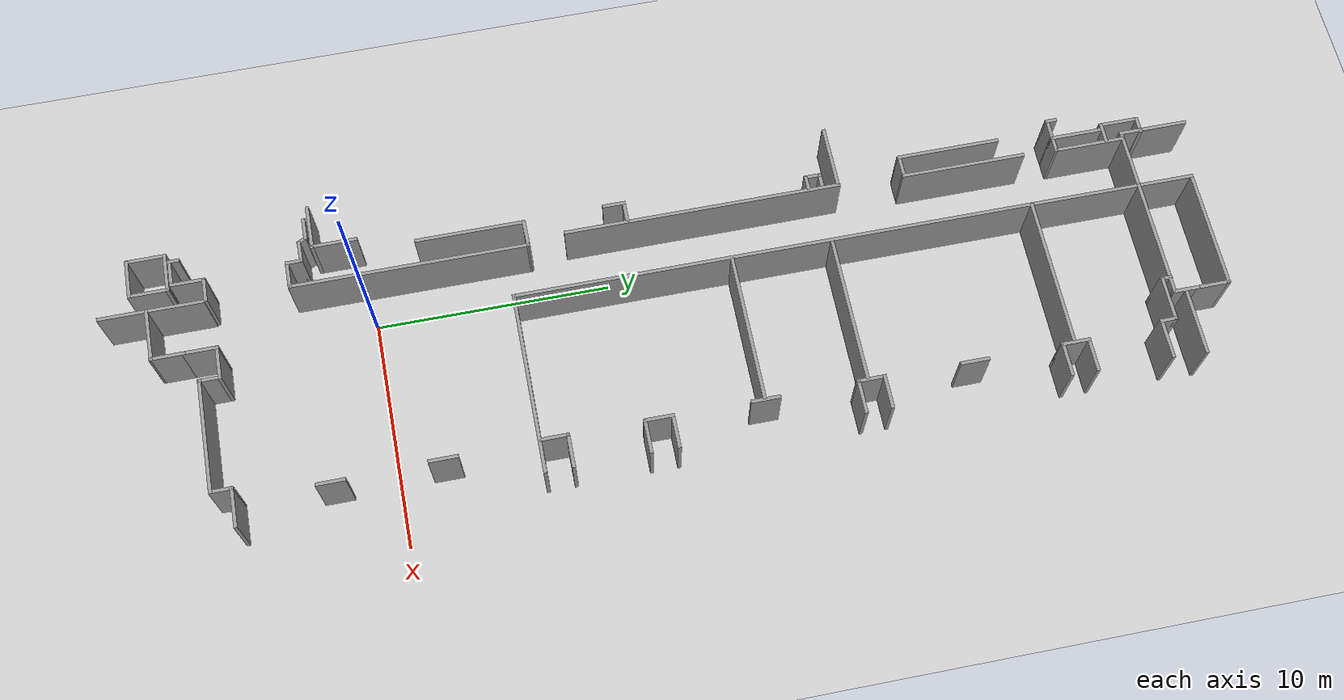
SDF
<sdf version="1.7">
 <world name="default">
  <model name="ground_plane">
   <static>1</static>
   <link name="link">
    <collision name="collision">
     <geometry><plane><normal>0 0 1</normal><size>100 100</size></plane></geometry>
     <surface>
      <contact><collide_bitmask>65535</collide_bitmask></contact>
      <friction><ode><mu>100</mu><mu2>50</mu2></ode></friction>
     </surface>
    </collision>
    <visual name="visual">
     <cast_shadows>0</cast_shadows>
     <geometry><plane><normal>0 0 1</normal><size>100 100</size></plane></geometry>
     <material>
      <script><uri>file://media/materials/scripts/gazebo.material</uri><name>Gazebo/Grey</name></script>
     </material>
    </visual>
   </link>
  </model>
  <model name="Tsudanuma_2-3-without_door">
   <pose>11.8595 12.3796 0 0 -0 0</pose>
   <link name="Wall_108">
    <collision name="Wall_108_Collision">
     <geometry><box><size>4.5 0.15 2.5</size></box></geometry>
     <pose>0 0 1.25 0 -0 0</pose>
    </collision>
    <visual name="Wall_108_Visual">
     <pose>0 0 1.25 0 -0 0</pose>
     <geometry><box><size>4.5 0.15 2.5</size></box></geometry>
     <material>
      <script><uri>file://media/materials/scripts/gazebo.material</uri><name>Gazebo/Grey</name></script>
      <ambient>1 1 1 1</ambient>
     </material>
     <meta><layer>0</layer></meta>
    </visual>
    <pose>-14.3708 13.0917 0 0 -0 -1.5708</pose>
   </link>
   <link name="Wall_109">
    <collision name="Wall_109_Collision">
     <geometry><box><size>1 0.15 2.5</size></box></geometry>
     <pose>0 0 1.25 0 -0 0</pose>
    </collision>
    <visual name="Wall_109_Visual">
     <pose>0 0 1.25 0 -0 0</pose>
     <geometry><box><size>1 0.15 2.5</size></box></geometry>
     <material>
      <script><uri>file://media/materials/scripts/gazebo.material</uri><name>Gazebo/Grey</name></script>
      <ambient>1 1 1 1</ambient>
     </material>
     <meta><layer>0</layer></meta>
    </visual>
    <pose>-13.9458 10.9167 0 0 -0 0</pose>
   </link>
   <link name="Wall_112">
    <collision name="Wall_112_Collision">
     <geometry><box><size>5.4 0.15 2.5</size></box></geometry>
     <pose>0 0 1.25 0 -0 0</pose>
    </collision>
    <visual name="Wall_112_Visual">
     <pose>0 0 1.25 0 -0 0</pose>
     <geometry><box><size>5.4 0.15 2.5</size></box></geometry>
     <material>
      <script><uri>file://media/materials/scripts/gazebo.material</uri><name>Gazebo/Grey</name></script>
      <ambient>1 1 1 1</ambient>
     </material>
     <meta><layer>0</layer></meta>
    </visual>
    <pose>-13.4614 13.5404 0 0 -0 -1.5708</pose>
   </link>
   <link name="Wall_122">
    <collision name="Wall_122_Collision">
     <geometry><box><size>12 0.15 2.5</size></box></geometry>
     <pose>0 0 1.25 0 -0 0</pose>
    </collision>
    <visual name="Wall_122_Visual">
     <pose>0 0 1.25 0 -0 0</pose>
     <geometry><box><size>12 0.15 2.5</size></box></geometry>
     <material>
      <script><uri>file://media/materials/scripts/gazebo.material</uri><name>Gazebo/Grey</name></script>
      <ambient>1 1 1 1</ambient>
     </material>
     <meta><layer>0</layer></meta>
    </visual>
    <pose>-13.5711 2.11814 0 0 -0 1.5708</pose>
   </link>
   <link name="Wall_123">
    <collision name="Wall_123_Collision">
     <geometry><box><size>2.82925 0.15 2.5</size></box></geometry>
     <pose>0 0 1.25 0 -0 0</pose>
    </collision>
    <visual name="Wall_123_Visual">
     <pose>0 0 1.25 0 -0 0</pose>
     <geometry><box><size>2.82925 0.15 2.5</size></box></geometry>
     <material>
      <script><uri>file://media/materials/scripts/gazebo.material</uri><name>Gazebo/Grey</name></script>
      <ambient>1 1 1 1</ambient>
     </material>
     <meta><layer>0</layer></meta>
    </visual>
    <pose>-14.9297 8.02417 0 0 -0 -3.14159</pose>
   </link>
   <link name="Wall_13">
    <collision name="Wall_13_Collision">
     <geometry><box><size>1.5 0.15 2.5</size></box></geometry>
     <pose>0 0 1.25 0 -0 0</pose>
    </collision>
    <visual name="Wall_13_Visual">
     <pose>0 0 1.25 0 -0 0</pose>
     <geometry><box><size>1.5 0.15 2.5</size></box></geometry>
     <material>
      <script><uri>file://media/materials/scripts/gazebo.material</uri><name>Gazebo/Grey</name></script>
      <ambient>1 1 1 1</ambient>
     </material>
     <meta><layer>0</layer></meta>
    </visual>
    <pose>-5.97206 22.335 0 0 -0 1.5708</pose>
   </link>
   <link name="Wall_135">
    <collision name="Wall_135_Collision">
     <geometry><box><size>1 0.15 2.5</size></box></geometry>
     <pose>0 0 1.25 0 -0 0</pose>
    </collision>
    <visual name="Wall_135_Visual">
     <pose>0 0 1.25 0 -0 0</pose>
     <geometry><box><size>1 0.15 2.5</size></box></geometry>
     <material>
      <script><uri>file://media/materials/scripts/gazebo.material</uri><name>Gazebo/Grey</name></script>
      <ambient>1 1 1 1</ambient>
     </material>
     <meta><layer>0</layer></meta>
    </visual>
    <pose>-14.4819 -1.56838 0 0 -0 1.5708</pose>
   </link>
   <link name="Wall_136">
    <collision name="Wall_136_Collision">
     <geometry><box><size>1 0.15 2.5</size></box></geometry>
     <pose>0 0 1.25 0 -0 0</pose>
    </collision>
    <visual name="Wall_136_Visual">
     <pose>0 0 1.25 0 -0 0</pose>
     <geometry><box><size>1 0.15 2.5</size></box></geometry>
     <material>
      <script><uri>file://media/materials/scripts/gazebo.material</uri><name>Gazebo/Grey</name></script>
      <ambient>1 1 1 1</ambient>
     </material>
     <meta><layer>0</layer></meta>
    </visual>
    <pose>-14.0569 -1.14338 0 0 -0 0</pose>
   </link>
   <link name="Wall_14">
    <collision name="Wall_14_Collision">
     <geometry><box><size>5.25 0.15 2.5</size></box></geometry>
     <pose>0 0 1.25 0 -0 0</pose>
    </collision>
    <visual name="Wall_14_Visual">
     <pose>0 0 1.25 0 -0 0</pose>
     <geometry><box><size>5.25 0.15 2.5</size></box></geometry>
     <material>
      <script><uri>file://media/materials/scripts/gazebo.material</uri><name>Gazebo/Grey</name></script>
      <ambient>1 1 1 1</ambient>
     </material>
     <meta><layer>0</layer></meta>
    </visual>
    <pose>-8.52206 23.01 0 0 -0 3.14159</pose>
   </link>
   <link name="Wall_15">
    <collision name="Wall_15_Collision">
     <geometry><box><size>2.5 0.15 2.5</size></box></geometry>
     <pose>0 0 1.25 0 -0 0</pose>
    </collision>
    <visual name="Wall_15_Visual">
     <pose>0 0 1.25 0 -0 0</pose>
     <geometry><box><size>2.5 0.15 2.5</size></box></geometry>
     <material>
      <script><uri>file://media/materials/scripts/gazebo.material</uri><name>Gazebo/Grey</name></script>
      <ambient>1 1 1 1</ambient>
     </material>
     <meta><layer>0</layer></meta>
    </visual>
    <pose>-11.0721 21.835 0 0 -0 -1.5708</pose>
   </link>
   <link name="Wall_152">
    <collision name="Wall_152_Collision">
     <geometry><box><size>1 0.15 2.5</size></box></geometry>
     <pose>0 0 1.25 0 -0 0</pose>
    </collision>
    <visual name="Wall_152_Visual">
     <pose>0 0 1.25 0 -0 0</pose>
     <geometry><box><size>1 0.15 2.5</size></box></geometry>
     <material>
      <script><uri>file://media/materials/scripts/gazebo.material</uri><name>Gazebo/Grey</name></script>
      <ambient>1 1 1 1</ambient>
     </material>
     <meta><layer>0</layer></meta>
    </visual>
    <pose>-15.8574 -14.6546 0 0 -0 0</pose>
   </link>
   <link name="Wall_153">
    <collision name="Wall_153_Collision">
     <geometry><box><size>0.5 0.15 2.5</size></box></geometry>
     <pose>0 0 1.25 0 -0 0</pose>
    </collision>
    <visual name="Wall_153_Visual">
     <pose>0 0 1.25 0 -0 0</pose>
     <geometry><box><size>0.5 0.15 2.5</size></box></geometry>
     <material>
      <script><uri>file://media/materials/scripts/gazebo.material</uri><name>Gazebo/Grey</name></script>
      <ambient>1 1 1 1</ambient>
     </material>
     <meta><layer>0</layer></meta>
    </visual>
    <pose>-15.3449 -14.8061 0 0 -0 -1.0472</pose>
   </link>
   <link name="Wall_154">
    <collision name="Wall_154_Collision">
     <geometry><box><size>1 0.15 2.5</size></box></geometry>
     <pose>0 0 1.25 0 -0 0</pose>
    </collision>
    <visual name="Wall_154_Visual">
     <pose>0 0 1.25 0 -0 0</pose>
     <geometry><box><size>1 0.15 2.5</size></box></geometry>
     <material>
      <script><uri>file://media/materials/scripts/gazebo.material</uri><name>Gazebo/Grey</name></script>
      <ambient>1 1 1 1</ambient>
     </material>
     <meta><layer>0</layer></meta>
    </visual>
    <pose>-14.8324 -14.9577 0 0 -0 0</pose>
   </link>
   <link name="Wall_155">
    <collision name="Wall_155_Collision">
     <geometry><box><size>0.75 0.15 2.5</size></box></geometry>
     <pose>0 0 1.25 0 -0 0</pose>
    </collision>
    <visual name="Wall_155_Visual">
     <pose>0 0 1.25 0 -0 0</pose>
     <geometry><box><size>0.75 0.15 2.5</size></box></geometry>
     <material>
      <script><uri>file://media/materials/scripts/gazebo.material</uri><name>Gazebo/Grey</name></script>
      <ambient>1 1 1 1</ambient>
     </material>
     <meta><layer>0</layer></meta>
    </visual>
    <pose>-14.4074 -15.2577 0 0 -0 -1.5708</pose>
   </link>
   <link name="Wall_156">
    <collision name="Wall_156_Collision">
     <geometry><box><size>1.25 0.15 2.5</size></box></geometry>
     <pose>0 0 1.25 0 -0 0</pose>
    </collision>
    <visual name="Wall_156_Visual">
     <pose>0 0 1.25 0 -0 0</pose>
     <geometry><box><size>1.25 0.15 2.5</size></box></geometry>
     <material>
      <script><uri>file://media/materials/scripts/gazebo.material</uri><name>Gazebo/Grey</name></script>
      <ambient>1 1 1 1</ambient>
     </material>
     <meta><layer>0</layer></meta>
    </visual>
    <pose>-13.8574 -15.5577 0 0 -0 0</pose>
   </link>
   <link name="Wall_157">
    <collision name="Wall_157_Collision">
     <geometry><box><size>10.25 0.15 2.5</size></box></geometry>
     <pose>0 0 1.25 0 -0 0</pose>
    </collision>
    <visual name="Wall_157_Visual">
     <pose>0 0 1.25 0 -0 0</pose>
     <geometry><box><size>10.25 0.15 2.5</size></box></geometry>
     <material>
      <script><uri>file://media/materials/scripts/gazebo.material</uri><name>Gazebo/Grey</name></script>
      <ambient>1 1 1 1</ambient>
     </material>
     <meta><layer>0</layer></meta>
    </visual>
    <pose>-13.3074 -10.5077 0 0 -0 1.5708</pose>
   </link>
   <link name="Wall_158">
    <collision name="Wall_158_Collision">
     <geometry><box><size>1.25 0.15 2.5</size></box></geometry>
     <pose>0 0 1.25 0 -0 0</pose>
    </collision>
    <visual name="Wall_158_Visual">
     <pose>0 0 1.25 0 -0 0</pose>
     <geometry><box><size>1.25 0.15 2.5</size></box></geometry>
     <material>
      <script><uri>file://media/materials/scripts/gazebo.material</uri><name>Gazebo/Grey</name></script>
      <ambient>1 1 1 1</ambient>
     </material>
     <meta><layer>0</layer></meta>
    </visual>
    <pose>-13.8574 -5.4671 0 0 -0 -3.12445</pose>
   </link>
   <link name="Wall_16">
    <collision name="Wall_16_Collision">
     <geometry><box><size>2.75 0.15 2.5</size></box></geometry>
     <pose>0 0 1.25 0 -0 0</pose>
    </collision>
    <visual name="Wall_16_Visual">
     <pose>0 0 1.25 0 -0 0</pose>
     <geometry><box><size>2.75 0.15 2.5</size></box></geometry>
     <material>
      <script><uri>file://media/materials/scripts/gazebo.material</uri><name>Gazebo/Grey</name></script>
      <ambient>1 1 1 1</ambient>
     </material>
     <meta><layer>0</layer></meta>
    </visual>
    <pose>-12.3721 20.66 0 0 -0 3.14159</pose>
   </link>
   <link name="Wall_163">
    <collision name="Wall_163_Collision">
     <geometry><box><size>4.75 0.15 2.5</size></box></geometry>
     <pose>0 0 1.25 0 -0 0</pose>
    </collision>
    <visual name="Wall_163_Visual">
     <pose>0 0 1.25 0 -0 0</pose>
     <geometry><box><size>4.75 0.15 2.5</size></box></geometry>
     <material>
      <script><uri>file://media/materials/scripts/gazebo.material</uri><name>Gazebo/Grey</name></script>
      <ambient>1 1 1 1</ambient>
     </material>
     <meta><layer>0</layer></meta>
    </visual>
    <pose>-14.4074 -7.77654 0 0 -0 -1.5708</pose>
   </link>
   <link name="Wall_17">
    <collision name="Wall_17_Collision">
     <geometry><box><size>3 0.15 2.5</size></box></geometry>
     <pose>0 0 1.25 0 -0 0</pose>
    </collision>
    <visual name="Wall_17_Visual">
     <pose>0 0 1.25 0 -0 0</pose>
     <geometry><box><size>3 0.15 2.5</size></box></geometry>
     <material>
      <script><uri>file://media/materials/scripts/gazebo.material</uri><name>Gazebo/Grey</name></script>
      <ambient>1 1 1 1</ambient>
     </material>
     <meta><layer>0</layer></meta>
    </visual>
    <pose>-13.6721 22.085 0 0 -0 1.5708</pose>
   </link>
   <link name="Wall_171">
    <collision name="Wall_171_Collision">
     <geometry><box><size>6.5 0.15 2.5</size></box></geometry>
     <pose>0 0 1.25 0 -0 0</pose>
    </collision>
    <visual name="Wall_171_Visual">
     <pose>0 0 1.25 0 -0 0</pose>
     <geometry><box><size>6.5 0.15 2.5</size></box></geometry>
     <material>
      <script><uri>file://media/materials/scripts/gazebo.material</uri><name>Gazebo/Grey</name></script>
      <ambient>1 1 1 1</ambient>
     </material>
     <meta><layer>0</layer></meta>
    </visual>
    <pose>-7.84492 7.16554 0 0 -0 0</pose>
   </link>
   <link name="Wall_173">
    <collision name="Wall_173_Collision">
     <geometry><box><size>6.5 0.15 2.5</size></box></geometry>
     <pose>0 0 1.25 0 -0 0</pose>
    </collision>
    <visual name="Wall_173_Visual">
     <pose>0 0 1.25 0 -0 0</pose>
     <geometry><box><size>6.5 0.15 2.5</size></box></geometry>
     <material>
      <script><uri>file://media/materials/scripts/gazebo.material</uri><name>Gazebo/Grey</name></script>
      <ambient>1 1 1 1</ambient>
     </material>
     <meta><layer>0</layer></meta>
    </visual>
    <pose>-7.81856 2.84875 0 0 -0 0</pose>
   </link>
   <link name="Wall_186">
    <collision name="Wall_186_Collision">
     <geometry><box><size>0.5 0.15 2.5</size></box></geometry>
     <pose>0 0 1.25 0 -0 0</pose>
    </collision>
    <visual name="Wall_186_Visual">
     <pose>0 0 1.25 0 -0 0</pose>
     <geometry><box><size>0.5 0.15 2.5</size></box></geometry>
     <material>
      <script><uri>file://media/materials/scripts/gazebo.material</uri><name>Gazebo/Grey</name></script>
      <ambient>1 1 1 1</ambient>
     </material>
     <meta><layer>0</layer></meta>
    </visual>
    <pose>-15.4221 -20.235 0 0 -0 -1.5708</pose>
   </link>
   <link name="Wall_187">
    <collision name="Wall_187_Collision">
     <geometry><box><size>1.25 0.15 2.5</size></box></geometry>
     <pose>0 0 1.25 0 -0 0</pose>
    </collision>
    <visual name="Wall_187_Visual">
     <pose>0 0 1.25 0 -0 0</pose>
     <geometry><box><size>1.25 0.15 2.5</size></box></geometry>
     <material>
      <script><uri>file://media/materials/scripts/gazebo.material</uri><name>Gazebo/Grey</name></script>
      <ambient>1 1 1 1</ambient>
     </material>
     <meta><layer>0</layer></meta>
    </visual>
    <pose>-14.8721 -20.41 0 0 -0 0</pose>
   </link>
   <link name="Wall_188">
    <collision name="Wall_188_Collision">
     <geometry><box><size>1.5 0.15 2.5</size></box></geometry>
     <pose>0 0 1.25 0 -0 0</pose>
    </collision>
    <visual name="Wall_188_Visual">
     <pose>0 0 1.25 0 -0 0</pose>
     <geometry><box><size>1.5 0.15 2.5</size></box></geometry>
     <material>
      <script><uri>file://media/materials/scripts/gazebo.material</uri><name>Gazebo/Grey</name></script>
      <ambient>1 1 1 1</ambient>
     </material>
     <meta><layer>0</layer></meta>
    </visual>
    <pose>-14.3221 -19.735 0 0 -0 1.5708</pose>
   </link>
   <link name="Wall_189">
    <collision name="Wall_189_Collision">
     <geometry><box><size>1.1 0.15 2.5</size></box></geometry>
     <pose>0 0 1.25 0 -0 0</pose>
    </collision>
    <visual name="Wall_189_Visual">
     <pose>0 0 1.25 0 -0 0</pose>
     <geometry><box><size>1.1 0.15 2.5</size></box></geometry>
     <material>
      <script><uri>file://media/materials/scripts/gazebo.material</uri><name>Gazebo/Grey</name></script>
      <ambient>1 1 1 1</ambient>
     </material>
     <meta><layer>0</layer></meta>
    </visual>
    <pose>-13.8471 -19.06 0 0 -0 0</pose>
   </link>
   <link name="Wall_192">
    <collision name="Wall_192_Collision">
     <geometry><box><size>2.5 0.15 2.5</size></box></geometry>
     <pose>0 0 1.25 0 -0 0</pose>
    </collision>
    <visual name="Wall_192_Visual">
     <pose>0 0 1.25 0 -0 0</pose>
     <geometry><box><size>2.5 0.15 2.5</size></box></geometry>
     <material>
      <script><uri>file://media/materials/scripts/gazebo.material</uri><name>Gazebo/Grey</name></script>
      <ambient>1 1 1 1</ambient>
     </material>
     <meta><layer>0</layer></meta>
    </visual>
    <pose>-13.3221 -20.365 0 0 -0 1.5708</pose>
   </link>
   <link name="Wall_194">
    <collision name="Wall_194_Collision">
     <geometry><box><size>1.5 0.15 2.5</size></box></geometry>
     <pose>0 0 1.25 0 -0 0</pose>
    </collision>
    <visual name="Wall_194_Visual">
     <pose>0 0 1.25 0 -0 0</pose>
     <geometry><box><size>1.5 0.15 2.5</size></box></geometry>
     <material>
      <script><uri>file://media/materials/scripts/gazebo.material</uri><name>Gazebo/Grey</name></script>
      <ambient>1 1 1 1</ambient>
     </material>
     <meta><layer>0</layer></meta>
    </visual>
    <pose>-11.1311 -19.4885 0 0 -0 1.5708</pose>
   </link>
   <link name="Wall_195">
    <collision name="Wall_195_Collision">
     <geometry><box><size>1.5 0.15 2.5</size></box></geometry>
     <pose>0 0 1.25 0 -0 0</pose>
    </collision>
    <visual name="Wall_195_Visual">
     <pose>0 0 1.25 0 -0 0</pose>
     <geometry><box><size>1.5 0.15 2.5</size></box></geometry>
     <material>
      <script><uri>file://media/materials/scripts/gazebo.material</uri><name>Gazebo/Grey</name></script>
      <ambient>1 1 1 1</ambient>
     </material>
     <meta><layer>0</layer></meta>
    </visual>
    <pose>-10.4561 -18.8135 0 0 -0 0</pose>
   </link>
   <link name="Wall_196">
    <collision name="Wall_196_Collision">
     <geometry><box><size>1 0.15 2.5</size></box></geometry>
     <pose>0 0 1.25 0 -0 0</pose>
    </collision>
    <visual name="Wall_196_Visual">
     <pose>0 0 1.25 0 -0 0</pose>
     <geometry><box><size>1 0.15 2.5</size></box></geometry>
     <material>
      <script><uri>file://media/materials/scripts/gazebo.material</uri><name>Gazebo/Grey</name></script>
      <ambient>1 1 1 1</ambient>
     </material>
     <meta><layer>0</layer></meta>
    </visual>
    <pose>-9.78112 -19.2385 0 0 -0 -1.5708</pose>
   </link>
   <link name="Wall_197">
    <collision name="Wall_197_Collision">
     <geometry><box><size>5 0.15 2.5</size></box></geometry>
     <pose>0 0 1.25 0 -0 0</pose>
    </collision>
    <visual name="Wall_197_Visual">
     <pose>0 0 1.25 0 -0 0</pose>
     <geometry><box><size>5 0.15 2.5</size></box></geometry>
     <material>
      <script><uri>file://media/materials/scripts/gazebo.material</uri><name>Gazebo/Grey</name></script>
      <ambient>1 1 1 1</ambient>
     </material>
     <meta><layer>0</layer></meta>
    </visual>
    <pose>-7.35612 -19.6635 0 0 -0 0</pose>
   </link>
   <link name="Wall_198">
    <collision name="Wall_198_Collision">
     <geometry><box><size>1 0.15 2.5</size></box></geometry>
     <pose>0 0 1.25 0 -0 0</pose>
    </collision>
    <visual name="Wall_198_Visual">
     <pose>0 0 1.25 0 -0 0</pose>
     <geometry><box><size>1 0.15 2.5</size></box></geometry>
     <material>
      <script><uri>file://media/materials/scripts/gazebo.material</uri><name>Gazebo/Grey</name></script>
      <ambient>1 1 1 1</ambient>
     </material>
     <meta><layer>0</layer></meta>
    </visual>
    <pose>-4.93112 -19.2385 0 0 -0 1.5708</pose>
   </link>
   <link name="Wall_199">
    <collision name="Wall_199_Collision">
     <geometry><box><size>1.75 0.15 2.5</size></box></geometry>
     <pose>0 0 1.25 0 -0 0</pose>
    </collision>
    <visual name="Wall_199_Visual">
     <pose>0 0 1.25 0 -0 0</pose>
     <geometry><box><size>1.75 0.15 2.5</size></box></geometry>
     <material>
      <script><uri>file://media/materials/scripts/gazebo.material</uri><name>Gazebo/Grey</name></script>
      <ambient>1 1 1 1</ambient>
     </material>
     <meta><layer>0</layer></meta>
    </visual>
    <pose>-4.13112 -18.8135 0 0 -0 0</pose>
   </link>
   <link name="Wall_202">
    <collision name="Wall_202_Collision">
     <geometry><box><size>1.25 0.15 2.5</size></box></geometry>
     <pose>0 0 1.25 0 -0 0</pose>
    </collision>
    <visual name="Wall_202_Visual">
     <pose>0 0 1.25 0 -0 0</pose>
     <geometry><box><size>1.25 0.15 2.5</size></box></geometry>
     <material>
      <script><uri>file://media/materials/scripts/gazebo.material</uri><name>Gazebo/Grey</name></script>
      <ambient>1 1 1 1</ambient>
     </material>
     <meta><layer>0</layer></meta>
    </visual>
    <pose>-4.43112 -14.9135 0 0 -0 1.5708</pose>
   </link>
   <link name="Wall_396">
    <collision name="Wall_396_Collision">
     <geometry><box><size>1.25 0.15 2.5</size></box></geometry>
     <pose>0 0 1.25 0 -0 0</pose>
    </collision>
    <visual name="Wall_396_Visual">
     <pose>0 0 1.25 0 -0 0</pose>
     <geometry><box><size>1.25 0.15 2.5</size></box></geometry>
     <material>
      <script><uri>file://media/materials/scripts/gazebo.material</uri><name>Gazebo/Grey</name></script>
      <ambient>1 1 1 1</ambient>
     </material>
     <meta><layer>0</layer></meta>
    </visual>
    <pose>-4.53561 -10.3654 0 0 -0 1.5708</pose>
   </link>
   <link name="Wall_427">
    <collision name="Wall_427_Collision">
     <geometry><box><size>1.25 0.15 2.5</size></box></geometry>
     <pose>0 0 1.25 0 -0 0</pose>
    </collision>
    <visual name="Wall_427_Visual">
     <pose>0 0 1.25 0 -0 0</pose>
     <geometry><box><size>1.25 0.15 2.5</size></box></geometry>
     <material>
      <script><uri>file://media/materials/scripts/gazebo.material</uri><name>Gazebo/Grey</name></script>
      <ambient>1 1 1 1</ambient>
     </material>
     <meta><layer>0</layer></meta>
    </visual>
    <pose>-4.58021 -5.82388 0 0 -0 1.5708</pose>
   </link>
   <link name="Wall_428">
    <collision name="Wall_428_Collision">
     <geometry><box><size>1.5 0.15 2.5</size></box></geometry>
     <pose>0 0 1.25 0 -0 0</pose>
    </collision>
    <visual name="Wall_428_Visual">
     <pose>0 0 1.25 0 -0 0</pose>
     <geometry><box><size>1.5 0.15 2.5</size></box></geometry>
     <material>
      <script><uri>file://media/materials/scripts/gazebo.material</uri><name>Gazebo/Grey</name></script>
      <ambient>1 1 1 1</ambient>
     </material>
     <meta><layer>0</layer></meta>
    </visual>
    <pose>-3.90521 -5.27388 0 0 -0 0</pose>
   </link>
   <link name="Wall_430">
    <collision name="Wall_430_Collision">
     <geometry><box><size>1.5 0.15 2.5</size></box></geometry>
     <pose>0 0 1.25 0 -0 0</pose>
    </collision>
    <visual name="Wall_430_Visual">
     <pose>0 0 1.25 0 -0 0</pose>
     <geometry><box><size>1.5 0.15 2.5</size></box></geometry>
     <material>
      <script><uri>file://media/materials/scripts/gazebo.material</uri><name>Gazebo/Grey</name></script>
      <ambient>1 1 1 1</ambient>
     </material>
     <meta><layer>0</layer></meta>
    </visual>
    <pose>-3.91033 -2.11014 0 0 -0 3.14159</pose>
   </link>
   <link name="Wall_431">
    <collision name="Wall_431_Collision">
     <geometry><box><size>1.3 0.15 2.5</size></box></geometry>
     <pose>0 0 1.25 0 -0 0</pose>
    </collision>
    <visual name="Wall_431_Visual">
     <pose>0 0 1.25 0 -0 0</pose>
     <geometry><box><size>1.3 0.15 2.5</size></box></geometry>
     <material>
      <script><uri>file://media/materials/scripts/gazebo.material</uri><name>Gazebo/Grey</name></script>
      <ambient>1 1 1 1</ambient>
     </material>
     <meta><layer>0</layer></meta>
    </visual>
    <pose>-4.58533 -1.53514 0 0 -0 1.5708</pose>
   </link>
   <link name="Wall_433">
    <collision name="Wall_433_Collision">
     <geometry><box><size>1.5 0.15 2.5</size></box></geometry>
     <pose>0 0 1.25 0 -0 0</pose>
    </collision>
    <visual name="Wall_433_Visual">
     <pose>0 0 1.25 0 -0 0</pose>
     <geometry><box><size>1.5 0.15 2.5</size></box></geometry>
     <material>
      <script><uri>file://media/materials/scripts/gazebo.material</uri><name>Gazebo/Grey</name></script>
      <ambient>1 1 1 1</ambient>
     </material>
     <meta><layer>0</layer></meta>
    </visual>
    <pose>-3.91033 -0.960138 0 0 -0 0</pose>
   </link>
   <link name="Wall_436">
    <collision name="Wall_436_Collision">
     <geometry><box><size>1.25 0.15 2.5</size></box></geometry>
     <pose>0 0 1.25 0 -0 0</pose>
    </collision>
    <visual name="Wall_436_Visual">
     <pose>0 0 1.25 0 -0 0</pose>
     <geometry><box><size>1.25 0.15 2.5</size></box></geometry>
     <material>
      <script><uri>file://media/materials/scripts/gazebo.material</uri><name>Gazebo/Grey</name></script>
      <ambient>1 1 1 1</ambient>
     </material>
     <meta><layer>0</layer></meta>
    </visual>
    <pose>-4.54653 2.8908 0 0 -0 1.5708</pose>
   </link>
   <link name="Wall_439">
    <collision name="Wall_439_Collision">
     <geometry><box><size>1.5 0.15 2.5</size></box></geometry>
     <pose>0 0 1.25 0 -0 0</pose>
    </collision>
    <visual name="Wall_439_Visual">
     <pose>0 0 1.25 0 -0 0</pose>
     <geometry><box><size>1.5 0.15 2.5</size></box></geometry>
     <material>
      <script><uri>file://media/materials/scripts/gazebo.material</uri><name>Gazebo/Grey</name></script>
      <ambient>1 1 1 1</ambient>
     </material>
     <meta><layer>0</layer></meta>
    </visual>
    <pose>-3.91779 6.76773 0 0 -0 3.14159</pose>
   </link>
   <link name="Wall_440">
    <collision name="Wall_440_Collision">
     <geometry><box><size>1.25 0.15 2.5</size></box></geometry>
     <pose>0 0 1.25 0 -0 0</pose>
    </collision>
    <visual name="Wall_440_Visual">
     <pose>0 0 1.25 0 -0 0</pose>
     <geometry><box><size>1.25 0.15 2.5</size></box></geometry>
     <material>
      <script><uri>file://media/materials/scripts/gazebo.material</uri><name>Gazebo/Grey</name></script>
      <ambient>1 1 1 1</ambient>
     </material>
     <meta><layer>0</layer></meta>
    </visual>
    <pose>-4.59279 7.31773 0 0 -0 1.5708</pose>
   </link>
   <link name="Wall_441">
    <collision name="Wall_441_Collision">
     <geometry><box><size>1.5 0.15 2.5</size></box></geometry>
     <pose>0 0 1.25 0 -0 0</pose>
    </collision>
    <visual name="Wall_441_Visual">
     <pose>0 0 1.25 0 -0 0</pose>
     <geometry><box><size>1.5 0.15 2.5</size></box></geometry>
     <material>
      <script><uri>file://media/materials/scripts/gazebo.material</uri><name>Gazebo/Grey</name></script>
      <ambient>1 1 1 1</ambient>
     </material>
     <meta><layer>0</layer></meta>
    </visual>
    <pose>-3.91779 7.86773 0 0 -0 0</pose>
   </link>
   <link name="Wall_444">
    <collision name="Wall_444_Collision">
     <geometry><box><size>1.25 0.15 2.5</size></box></geometry>
     <pose>0 0 1.25 0 -0 0</pose>
    </collision>
    <visual name="Wall_444_Visual">
     <pose>0 0 1.25 0 -0 0</pose>
     <geometry><box><size>1.25 0.15 2.5</size></box></geometry>
     <material>
      <script><uri>file://media/materials/scripts/gazebo.material</uri><name>Gazebo/Grey</name></script>
      <ambient>1 1 1 1</ambient>
     </material>
     <meta><layer>0</layer></meta>
    </visual>
    <pose>-4.53736 11.6744 0 0 -0 1.5708</pose>
   </link>
   <link name="Wall_447">
    <collision name="Wall_447_Collision">
     <geometry><box><size>1.5 0.15 2.5</size></box></geometry>
     <pose>0 0 1.25 0 -0 0</pose>
    </collision>
    <visual name="Wall_447_Visual">
     <pose>0 0 1.25 0 -0 0</pose>
     <geometry><box><size>1.5 0.15 2.5</size></box></geometry>
     <material>
      <script><uri>file://media/materials/scripts/gazebo.material</uri><name>Gazebo/Grey</name></script>
      <ambient>1 1 1 1</ambient>
     </material>
     <meta><layer>0</layer></meta>
    </visual>
    <pose>-3.8886 15.4256 0 0 -0 3.14159</pose>
   </link>
   <link name="Wall_448">
    <collision name="Wall_448_Collision">
     <geometry><box><size>1.25 0.15 2.5</size></box></geometry>
     <pose>0 0 1.25 0 -0 0</pose>
    </collision>
    <visual name="Wall_448_Visual">
     <pose>0 0 1.25 0 -0 0</pose>
     <geometry><box><size>1.25 0.15 2.5</size></box></geometry>
     <material>
      <script><uri>file://media/materials/scripts/gazebo.material</uri><name>Gazebo/Grey</name></script>
      <ambient>1 1 1 1</ambient>
     </material>
     <meta><layer>0</layer></meta>
    </visual>
    <pose>-4.5636 15.9756 0 0 -0 1.5708</pose>
   </link>
   <link name="Wall_449">
    <collision name="Wall_449_Collision">
     <geometry><box><size>1.5 0.15 2.5</size></box></geometry>
     <pose>0 0 1.25 0 -0 0</pose>
    </collision>
    <visual name="Wall_449_Visual">
     <pose>0 0 1.25 0 -0 0</pose>
     <geometry><box><size>1.5 0.15 2.5</size></box></geometry>
     <material>
      <script><uri>file://media/materials/scripts/gazebo.material</uri><name>Gazebo/Grey</name></script>
      <ambient>1 1 1 1</ambient>
     </material>
     <meta><layer>0</layer></meta>
    </visual>
    <pose>-3.8886 16.5256 0 0 -0 0</pose>
   </link>
   <link name="Wall_500">
    <collision name="Wall_500_Collision">
     <geometry><box><size>0.75 0.15 2.5</size></box></geometry>
     <pose>0 0 1.25 0 -0 0</pose>
    </collision>
    <visual name="Wall_500_Visual">
     <pose>0 0 1.25 0 -0 0</pose>
     <geometry><box><size>0.75 0.15 2.5</size></box></geometry>
     <material>
      <script><uri>file://media/materials/scripts/gazebo.material</uri><name>Gazebo/Grey</name></script>
      <ambient>1 1 1 1</ambient>
     </material>
     <meta><layer>0</layer></meta>
    </visual>
    <pose>-13.7113 17.6691 0 0 -0 0</pose>
   </link>
   <link name="Wall_523">
    <collision name="Wall_523_Collision">
     <geometry><box><size>0.75 0.15 2.5</size></box></geometry>
     <pose>0 0 1.25 0 -0 0</pose>
    </collision>
    <visual name="Wall_523_Visual">
     <pose>0 0 1.25 0 -0 0</pose>
     <geometry><box><size>0.75 0.15 2.5</size></box></geometry>
     <material>
      <script><uri>file://media/materials/scripts/gazebo.material</uri><name>Gazebo/Grey</name></script>
      <ambient>1 1 1 1</ambient>
     </material>
     <meta><layer>0</layer></meta>
    </visual>
    <pose>-13.8897 7.34966 0 0 -0 3.14159</pose>
   </link>
   <link name="Wall_524">
    <collision name="Wall_524_Collision">
     <geometry><box><size>0.75 0.15 2.5</size></box></geometry>
     <pose>0 0 1.25 0 -0 0</pose>
    </collision>
    <visual name="Wall_524_Visual">
     <pose>0 0 1.25 0 -0 0</pose>
     <geometry><box><size>0.75 0.15 2.5</size></box></geometry>
     <material>
      <script><uri>file://media/materials/scripts/gazebo.material</uri><name>Gazebo/Grey</name></script>
      <ambient>1 1 1 1</ambient>
     </material>
     <meta><layer>0</layer></meta>
    </visual>
    <pose>-14.1897 7.04966 0 0 -0 -1.5708</pose>
   </link>
   <link name="Wall_525">
    <collision name="Wall_525_Collision">
     <geometry><box><size>0.75 0.15 2.5</size></box></geometry>
     <pose>0 0 1.25 0 -0 0</pose>
    </collision>
    <visual name="Wall_525_Visual">
     <pose>0 0 1.25 0 -0 0</pose>
     <geometry><box><size>0.75 0.15 2.5</size></box></geometry>
     <material>
      <script><uri>file://media/materials/scripts/gazebo.material</uri><name>Gazebo/Grey</name></script>
      <ambient>1 1 1 1</ambient>
     </material>
     <meta><layer>0</layer></meta>
    </visual>
    <pose>-13.8897 6.74966 0 0 -0 0</pose>
   </link>
   <link name="Wall_546">
    <collision name="Wall_546_Collision">
     <geometry><box><size>2 0.15 2.5</size></box></geometry>
     <pose>0 0 1.25 0 -0 0</pose>
    </collision>
    <visual name="Wall_546_Visual">
     <pose>0 0 1.25 0 -0 0</pose>
     <geometry><box><size>2 0.15 2.5</size></box></geometry>
     <material>
      <script><uri>file://media/materials/scripts/gazebo.material</uri><name>Gazebo/Grey</name></script>
      <ambient>1 1 1 1</ambient>
     </material>
     <meta><layer>0</layer></meta>
    </visual>
    <pose>-14.9789 -13.509 0 0 -0 -1.5708</pose>
   </link>
   <link name="Wall_547">
    <collision name="Wall_547_Collision">
     <geometry><box><size>2 0.15 2.5</size></box></geometry>
     <pose>0 0 1.25 0 -0 0</pose>
    </collision>
    <visual name="Wall_547_Visual">
     <pose>0 0 1.25 0 -0 0</pose>
     <geometry><box><size>2 0.15 2.5</size></box></geometry>
     <material>
      <script><uri>file://media/materials/scripts/gazebo.material</uri><name>Gazebo/Grey</name></script>
      <ambient>1 1 1 1</ambient>
     </material>
     <meta><layer>0</layer></meta>
    </visual>
    <pose>-15.9039 -14.434 0 0 -0 3.14159</pose>
   </link>
   <link name="Wall_560">
    <collision name="Wall_560_Collision">
     <geometry><box><size>1.75 0.15 2.5</size></box></geometry>
     <pose>0 0 1.25 0 -0 0</pose>
    </collision>
    <visual name="Wall_560_Visual">
     <pose>0 0 1.25 0 -0 0</pose>
     <geometry><box><size>1.75 0.15 2.5</size></box></geometry>
     <material>
      <script><uri>file://media/materials/scripts/gazebo.material</uri><name>Gazebo/Grey</name></script>
      <ambient>1 1 1 1</ambient>
     </material>
     <meta><layer>0</layer></meta>
    </visual>
    <pose>-15.7383 -21.3807 0 0 -0 -1.5708</pose>
   </link>
   <link name="Wall_562">
    <collision name="Wall_562_Collision">
     <geometry><box><size>1.75 0.15 2.5</size></box></geometry>
     <pose>0 0 1.25 0 -0 0</pose>
    </collision>
    <visual name="Wall_562_Visual">
     <pose>0 0 1.25 0 -0 0</pose>
     <geometry><box><size>1.75 0.15 2.5</size></box></geometry>
     <material>
      <script><uri>file://media/materials/scripts/gazebo.material</uri><name>Gazebo/Grey</name></script>
      <ambient>1 1 1 1</ambient>
     </material>
     <meta><layer>0</layer></meta>
    </visual>
    <pose>-14.9383 -22.1807 0 0 -0 0</pose>
   </link>
   <link name="Wall_563">
    <collision name="Wall_563_Collision">
     <geometry><box><size>1.75 0.15 2.5</size></box></geometry>
     <pose>0 0 1.25 0 -0 0</pose>
    </collision>
    <visual name="Wall_563_Visual">
     <pose>0 0 1.25 0 -0 0</pose>
     <geometry><box><size>1.75 0.15 2.5</size></box></geometry>
     <material>
      <script><uri>file://media/materials/scripts/gazebo.material</uri><name>Gazebo/Grey</name></script>
      <ambient>1 1 1 1</ambient>
     </material>
     <meta><layer>0</layer></meta>
    </visual>
    <pose>-14.1383 -21.3807 0 0 -0 1.5708</pose>
   </link>
   <link name="Wall_564">
    <collision name="Wall_564_Collision">
     <geometry><box><size>1.75 0.15 2.5</size></box></geometry>
     <pose>0 0 1.25 0 -0 0</pose>
    </collision>
    <visual name="Wall_564_Visual">
     <pose>0 0 1.25 0 -0 0</pose>
     <geometry><box><size>1.75 0.15 2.5</size></box></geometry>
     <material>
      <script><uri>file://media/materials/scripts/gazebo.material</uri><name>Gazebo/Grey</name></script>
      <ambient>1 1 1 1</ambient>
     </material>
     <meta><layer>0</layer></meta>
    </visual>
    <pose>-14.9383 -20.5807 0 0 -0 3.14159</pose>
   </link>
   <link name="Wall_6">
    <collision name="Wall_6_Collision">
     <geometry><box><size>2.15372 0.15 2.5</size></box></geometry>
     <pose>0 0 1.25 0 -0 0</pose>
    </collision>
    <visual name="Wall_6_Visual">
     <pose>0 0 1.25 0 -0 0</pose>
     <geometry><box><size>2.15372 0.15 2.5</size></box></geometry>
     <material>
      <script><uri>file://media/materials/scripts/gazebo.material</uri><name>Gazebo/Grey</name></script>
      <ambient>1 1 1 1</ambient>
     </material>
     <meta><layer>0</layer></meta>
    </visual>
    <pose>-13.3221 -22.5082 0 0 -0 1.5708</pose>
   </link>
   <link name="Wall_62">
    <collision name="Wall_62_Collision">
     <geometry><box><size>0.5 0.15 2.5</size></box></geometry>
     <pose>0 0 1.25 0 -0 0</pose>
    </collision>
    <visual name="Wall_62_Visual">
     <pose>0 0 1.25 0 -0 0</pose>
     <geometry><box><size>0.5 0.15 2.5</size></box></geometry>
     <material>
      <script><uri>file://media/materials/scripts/gazebo.material</uri><name>Gazebo/Grey</name></script>
      <ambient>1 1 1 1</ambient>
     </material>
     <meta><layer>0</layer></meta>
    </visual>
    <pose>-14.8613 17.8441 0 0 -0 -1.5708</pose>
   </link>
   <link name="Wall_63">
    <collision name="Wall_63_Collision">
     <geometry><box><size>1 0.15 2.5</size></box></geometry>
     <pose>0 0 1.25 0 -0 0</pose>
    </collision>
    <visual name="Wall_63_Visual">
     <pose>0 0 1.25 0 -0 0</pose>
     <geometry><box><size>1 0.15 2.5</size></box></geometry>
     <material>
      <script><uri>file://media/materials/scripts/gazebo.material</uri><name>Gazebo/Grey</name></script>
      <ambient>1 1 1 1</ambient>
     </material>
     <meta><layer>0</layer></meta>
    </visual>
    <pose>-14.4363 17.6691 0 0 -0 0</pose>
   </link>
   <link name="Wall_64">
    <collision name="Wall_64_Collision">
     <geometry><box><size>2.25 0.15 2.5</size></box></geometry>
     <pose>0 0 1.25 0 -0 0</pose>
    </collision>
    <visual name="Wall_64_Visual">
     <pose>0 0 1.25 0 -0 0</pose>
     <geometry><box><size>2.25 0.15 2.5</size></box></geometry>
     <material>
      <script><uri>file://media/materials/scripts/gazebo.material</uri><name>Gazebo/Grey</name></script>
      <ambient>1 1 1 1</ambient>
     </material>
     <meta><layer>0</layer></meta>
    </visual>
    <pose>-14.0113 18.7191 0 0 -0 1.5708</pose>
   </link>
   <link name="Wall_66">
    <collision name="Wall_66_Collision">
     <geometry><box><size>3 0.15 2.5</size></box></geometry>
     <pose>0 0 1.25 0 -0 0</pose>
    </collision>
    <visual name="Wall_66_Visual">
     <pose>0 0 1.25 0 -0 0</pose>
     <geometry><box><size>3 0.15 2.5</size></box></geometry>
     <material>
      <script><uri>file://media/materials/scripts/gazebo.material</uri><name>Gazebo/Grey</name></script>
      <ambient>1 1 1 1</ambient>
     </material>
     <meta><layer>0</layer></meta>
    </visual>
    <pose>-13.4113 19.1941 0 0 -0 1.5708</pose>
   </link>
   <link name="Wall_68">
    <collision name="Wall_68_Collision">
     <geometry><box><size>0.75 0.15 2.5</size></box></geometry>
     <pose>0 0 1.25 0 -0 0</pose>
    </collision>
    <visual name="Wall_68_Visual">
     <pose>0 0 1.25 0 -0 0</pose>
     <geometry><box><size>0.75 0.15 2.5</size></box></geometry>
     <material>
      <script><uri>file://media/materials/scripts/gazebo.material</uri><name>Gazebo/Grey</name></script>
      <ambient>1 1 1 1</ambient>
     </material>
     <meta><layer>0</layer></meta>
    </visual>
    <pose>-13.9334 21.5169 0 0 -0 3.14159</pose>
   </link>
   <link name="Wall_69">
    <collision name="Wall_69_Collision">
     <geometry><box><size>1.75 0.15 2.5</size></box></geometry>
     <pose>0 0 1.25 0 -0 0</pose>
    </collision>
    <visual name="Wall_69_Visual">
     <pose>0 0 1.25 0 -0 0</pose>
     <geometry><box><size>1.75 0.15 2.5</size></box></geometry>
     <material>
      <script><uri>file://media/materials/scripts/gazebo.material</uri><name>Gazebo/Grey</name></script>
      <ambient>1 1 1 1</ambient>
     </material>
     <meta><layer>0</layer></meta>
    </visual>
    <pose>-14.2334 20.7169 0 0 -0 -1.5708</pose>
   </link>
   <link name="Wall_7">
    <collision name="Wall_7_Collision">
     <geometry><box><size>2.3411 0.15 2.5</size></box></geometry>
     <pose>0 0 1.25 0 -0 0</pose>
    </collision>
    <visual name="Wall_7_Visual">
     <pose>0 0 1.25 0 -0 0</pose>
     <geometry><box><size>2.3411 0.15 2.5</size></box></geometry>
     <material>
      <script><uri>file://media/materials/scripts/gazebo.material</uri><name>Gazebo/Grey</name></script>
      <ambient>1 1 1 1</ambient>
     </material>
     <meta><layer>0</layer></meta>
    </visual>
    <pose>-12.2266 -21.5267 0 0 -0 0.012099</pose>
   </link>
   <link name="Wall_70">
    <collision name="Wall_70_Collision">
     <geometry><box><size>0.95 0.15 2.5</size></box></geometry>
     <pose>0 0 1.25 0 -0 0</pose>
    </collision>
    <visual name="Wall_70_Visual">
     <pose>0 0 1.25 0 -0 0</pose>
     <geometry><box><size>0.95 0.15 2.5</size></box></geometry>
     <material>
      <script><uri>file://media/materials/scripts/gazebo.material</uri><name>Gazebo/Grey</name></script>
      <ambient>1 1 1 1</ambient>
     </material>
     <meta><layer>0</layer></meta>
    </visual>
    <pose>-13.8334 19.9169 0 0 -0 0</pose>
   </link>
   <link name="Wall_72">
    <collision name="Wall_72_Collision">
     <geometry><box><size>27.25 0.15 2.5</size></box></geometry>
     <pose>0 0 1.25 0 -0 0</pose>
    </collision>
    <visual name="Wall_72_Visual">
     <pose>0 0 1.25 0 -0 0</pose>
     <geometry><box><size>27.25 0.15 2.5</size></box></geometry>
     <material>
      <script><uri>file://media/materials/scripts/gazebo.material</uri><name>Gazebo/Grey</name></script>
      <ambient>1 1 1 1</ambient>
     </material>
     <meta><layer>0</layer></meta>
    </visual>
    <pose>-11.0721 7.11004 0 0 -0 -1.5708</pose>
   </link>
   <link name="Wall_73">
    <collision name="Wall_73_Collision">
     <geometry><box><size>8 0.15 2.5</size></box></geometry>
     <pose>0 0 1.25 0 -0 0</pose>
    </collision>
    <visual name="Wall_73_Visual">
     <pose>0 0 1.25 0 -0 0</pose>
     <geometry><box><size>8 0.15 2.5</size></box></geometry>
     <material>
      <script><uri>file://media/materials/scripts/gazebo.material</uri><name>Gazebo/Grey</name></script>
      <ambient>1 1 1 1</ambient>
     </material>
     <meta><layer>0</layer></meta>
    </visual>
    <pose>-7.14706 -6.43996 0 0 -0 0</pose>
   </link>
   <link name="Wall_75">
    <collision name="Wall_75_Collision">
     <geometry><box><size>5.25 0.15 2.5</size></box></geometry>
     <pose>0 0 1.25 0 -0 0</pose>
    </collision>
    <visual name="Wall_75_Visual">
     <pose>0 0 1.25 0 -0 0</pose>
     <geometry><box><size>5.25 0.15 2.5</size></box></geometry>
     <material>
      <script><uri>file://media/materials/scripts/gazebo.material</uri><name>Gazebo/Grey</name></script>
      <ambient>1 1 1 1</ambient>
     </material>
     <meta><layer>0</layer></meta>
    </visual>
    <pose>-8.52206 20.66 0 0 -0 0</pose>
   </link>
   <link name="Wall_76">
    <collision name="Wall_76_Collision">
     <geometry><box><size>1.15 0.15 2.5</size></box></geometry>
     <pose>0 0 1.25 0 -0 0</pose>
    </collision>
    <visual name="Wall_76_Visual">
     <pose>0 0 1.25 0 -0 0</pose>
     <geometry><box><size>1.15 0.15 2.5</size></box></geometry>
     <material>
      <script><uri>file://media/materials/scripts/gazebo.material</uri><name>Gazebo/Grey</name></script>
      <ambient>1 1 1 1</ambient>
     </material>
     <meta><layer>0</layer></meta>
    </visual>
    <pose>-5.97206 21.16 0 0 -0 1.5708</pose>
   </link>
   <link name="Wall_78">
    <collision name="Wall_78_Collision">
     <geometry><box><size>0.5 0.15 2.5</size></box></geometry>
     <pose>0 0 1.25 0 -0 0</pose>
    </collision>
    <visual name="Wall_78_Visual">
     <pose>0 0 1.25 0 -0 0</pose>
     <geometry><box><size>0.5 0.15 2.5</size></box></geometry>
     <material>
      <script><uri>file://media/materials/scripts/gazebo.material</uri><name>Gazebo/Grey</name></script>
      <ambient>1 1 1 1</ambient>
     </material>
     <meta><layer>0</layer></meta>
    </visual>
    <pose>-6.6375 20.5036 0 0 -0 -1.5708</pose>
   </link>
   <link name="Wall_79">
    <collision name="Wall_79_Collision">
     <geometry><box><size>2 0.15 2.5</size></box></geometry>
     <pose>0 0 1.25 0 -0 0</pose>
    </collision>
    <visual name="Wall_79_Visual">
     <pose>0 0 1.25 0 -0 0</pose>
     <geometry><box><size>2 0.15 2.5</size></box></geometry>
     <material>
      <script><uri>file://media/materials/scripts/gazebo.material</uri><name>Gazebo/Grey</name></script>
      <ambient>1 1 1 1</ambient>
     </material>
     <meta><layer>0</layer></meta>
    </visual>
    <pose>-5.7125 20.3286 0 0 -0 0</pose>
   </link>
   <link name="Wall_80">
    <collision name="Wall_80_Collision">
     <geometry><box><size>0.75 0.15 2.5</size></box></geometry>
     <pose>0 0 1.25 0 -0 0</pose>
    </collision>
    <visual name="Wall_80_Visual">
     <pose>0 0 1.25 0 -0 0</pose>
     <geometry><box><size>0.75 0.15 2.5</size></box></geometry>
     <material>
      <script><uri>file://media/materials/scripts/gazebo.material</uri><name>Gazebo/Grey</name></script>
      <ambient>1 1 1 1</ambient>
     </material>
     <meta><layer>0</layer></meta>
    </visual>
    <pose>-4.7875 20.0286 0 0 -0 -1.5708</pose>
   </link>
   <link name="Wall_81">
    <collision name="Wall_81_Collision">
     <geometry><box><size>1.75 0.15 2.5</size></box></geometry>
     <pose>0 0 1.25 0 -0 0</pose>
    </collision>
    <visual name="Wall_81_Visual">
     <pose>0 0 1.25 0 -0 0</pose>
     <geometry><box><size>1.75 0.15 2.5</size></box></geometry>
     <material>
      <script><uri>file://media/materials/scripts/gazebo.material</uri><name>Gazebo/Grey</name></script>
      <ambient>1 1 1 1</ambient>
     </material>
     <meta><layer>0</layer></meta>
    </visual>
    <pose>-3.9875 19.7286 0 0 -0 0</pose>
   </link>
   <link name="Wall_88">
    <collision name="Wall_88_Collision">
     <geometry><box><size>3 0.15 2.5</size></box></geometry>
     <pose>0 0 1.25 0 -0 0</pose>
    </collision>
    <visual name="Wall_88_Visual">
     <pose>0 0 1.25 0 -0 0</pose>
     <geometry><box><size>3 0.15 2.5</size></box></geometry>
     <material>
      <script><uri>file://media/materials/scripts/gazebo.material</uri><name>Gazebo/Grey</name></script>
      <ambient>1 1 1 1</ambient>
     </material>
     <meta><layer>0</layer></meta>
    </visual>
    <pose>-4.53969 21.1441 0 0 -0 0</pose>
   </link>
   <link name="Wall_9">
    <collision name="Wall_9_Collision">
     <geometry><box><size>1.5 0.15 2.5</size></box></geometry>
     <pose>0 0 1.25 0 -0 0</pose>
    </collision>
    <visual name="Wall_9_Visual">
     <pose>0 0 1.25 0 -0 0</pose>
     <geometry><box><size>1.5 0.15 2.5</size></box></geometry>
     <material>
      <script><uri>file://media/materials/scripts/gazebo.material</uri><name>Gazebo/Grey</name></script>
      <ambient>1 1 1 1</ambient>
     </material>
     <meta><layer>0</layer></meta>
    </visual>
    <pose>-11.1311 -20.8517 0 0 -0 1.5708</pose>
   </link>
   <link name="Wall_95">
    <collision name="Wall_95_Collision">
     <geometry><box><size>6.5 0.15 2.5</size></box></geometry>
     <pose>0 0 1.25 0 -0 0</pose>
    </collision>
    <visual name="Wall_95_Visual">
     <pose>0 0 1.25 0 -0 0</pose>
     <geometry><box><size>6.5 0.15 2.5</size></box></geometry>
     <material>
      <script><uri>file://media/materials/scripts/gazebo.material</uri><name>Gazebo/Grey</name></script>
      <ambient>1 1 1 1</ambient>
     </material>
     <meta><layer>0</layer></meta>
    </visual>
    <pose>-7.85578 15.9143 0 0 -0 0</pose>
   </link>
   <static>1</static>
  </model>
 </world>
</sdf>
